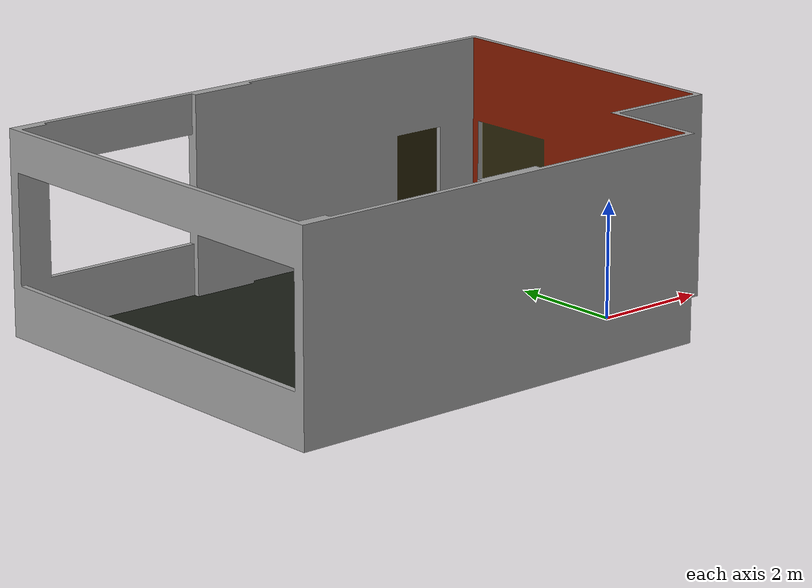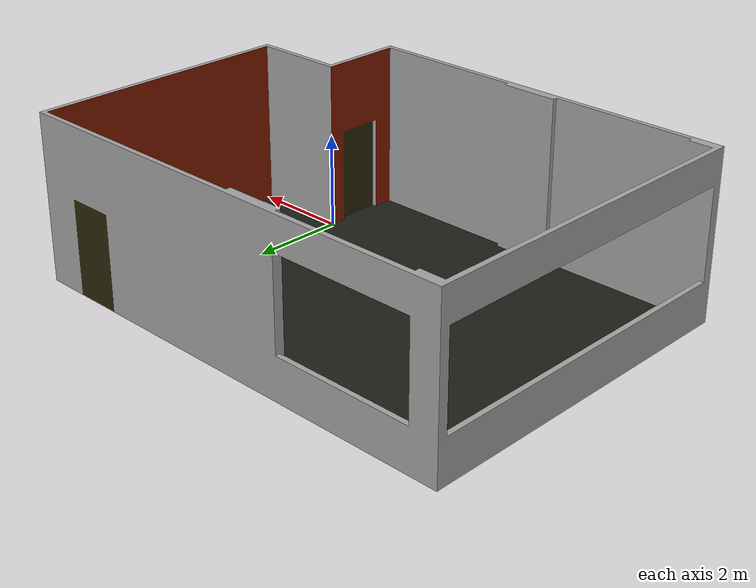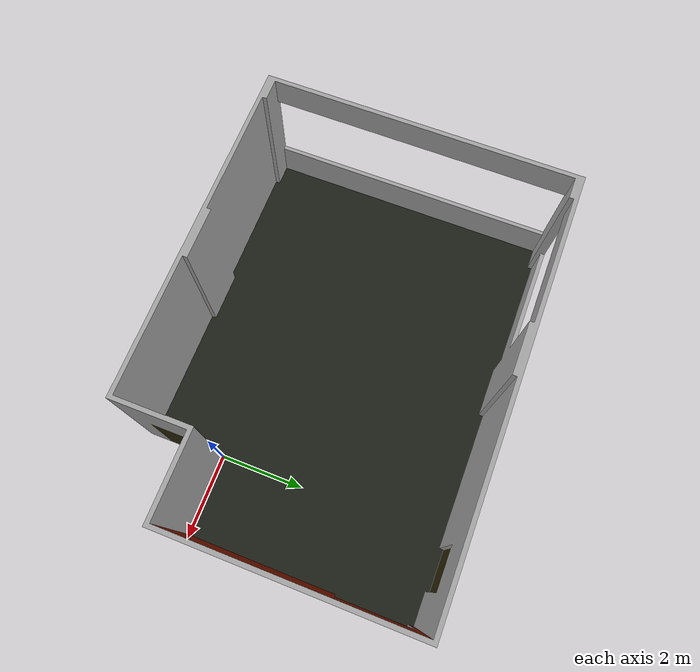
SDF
<?xml version="1.0" ?>
<sdf version="1.5">
  <model name="sala_L15">
    <static>true</static>
    <link name="link">
      <collision name="collision">
        <geometry>
          <mesh>
            <uri>model://sala_L15/meshes/Sala_L15.dae</uri>
          </mesh>
        </geometry>
      </collision>
      <visual name="visual">
        <geometry>
          <mesh>
            <uri>model://sala_L15/meshes/Sala_L15.dae</uri>
          </mesh>
        </geometry>
      </visual>
    </link>
  </model>
</sdf>
